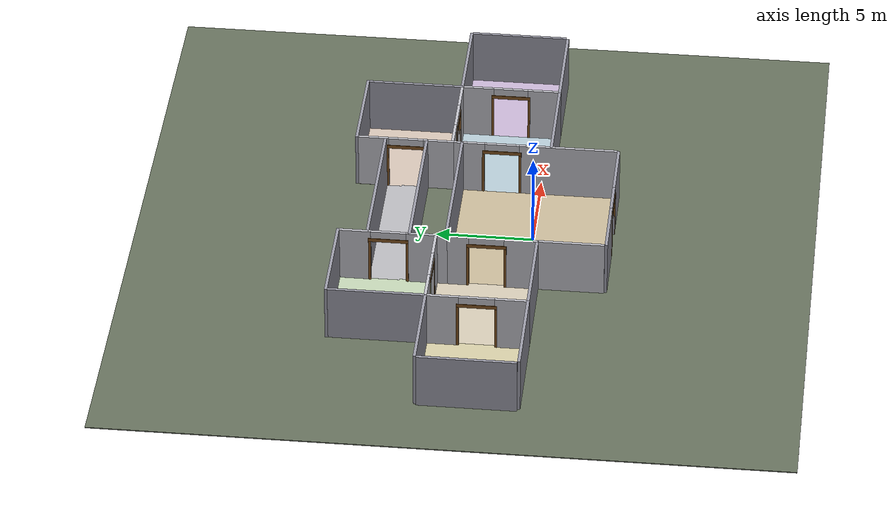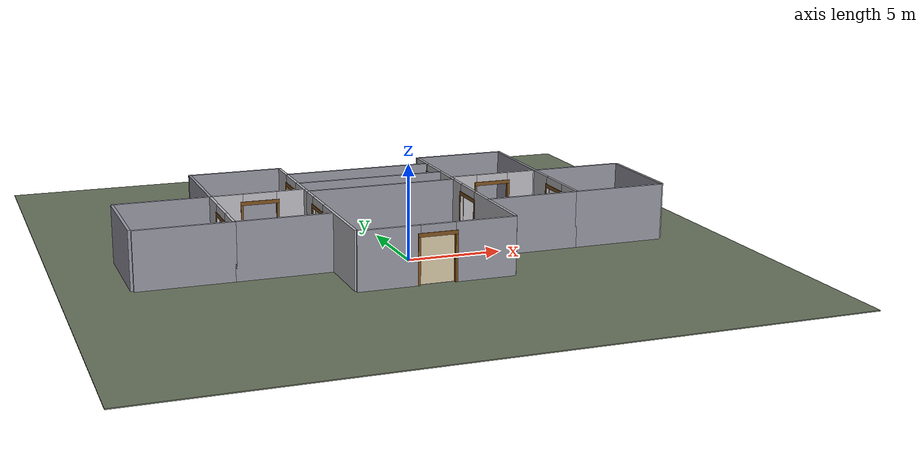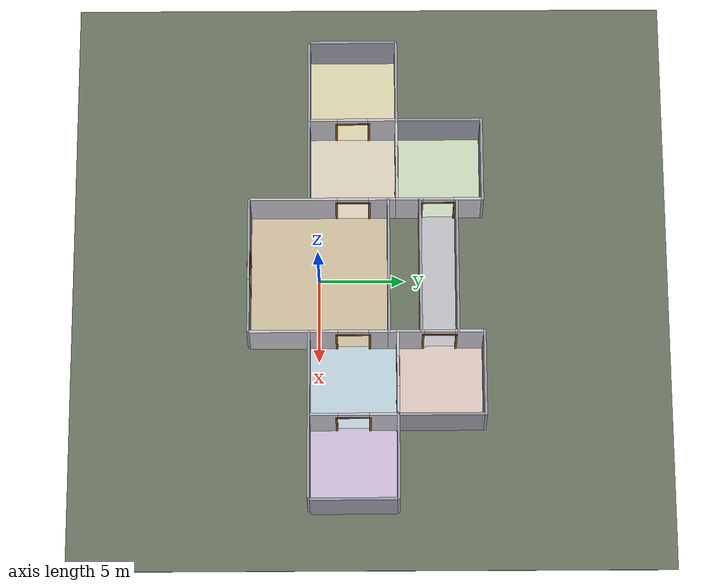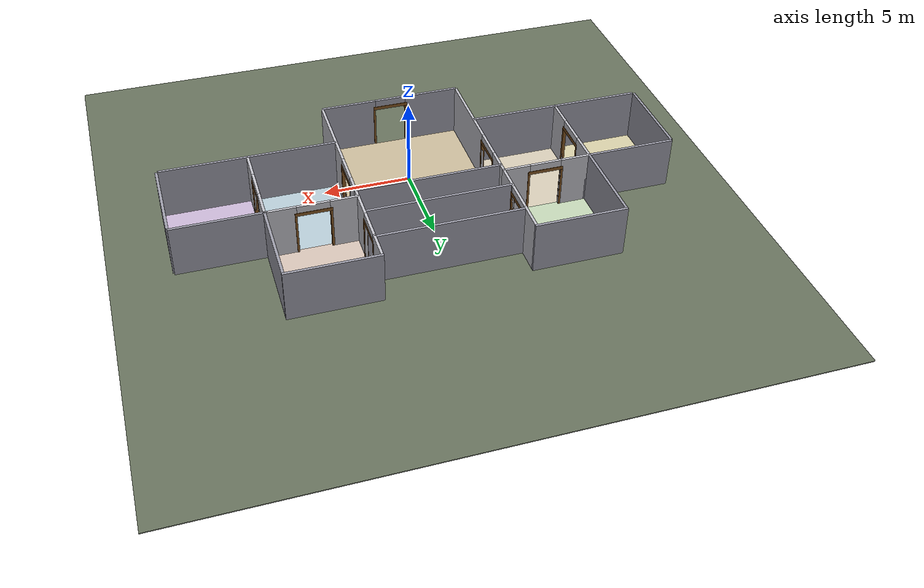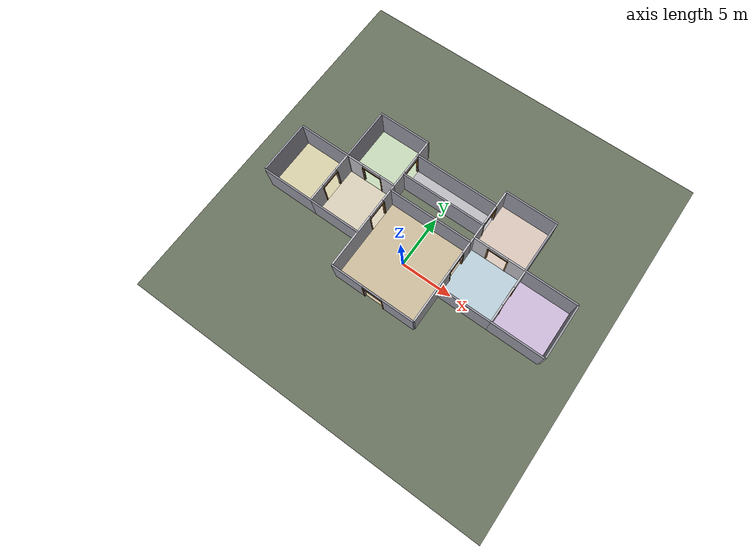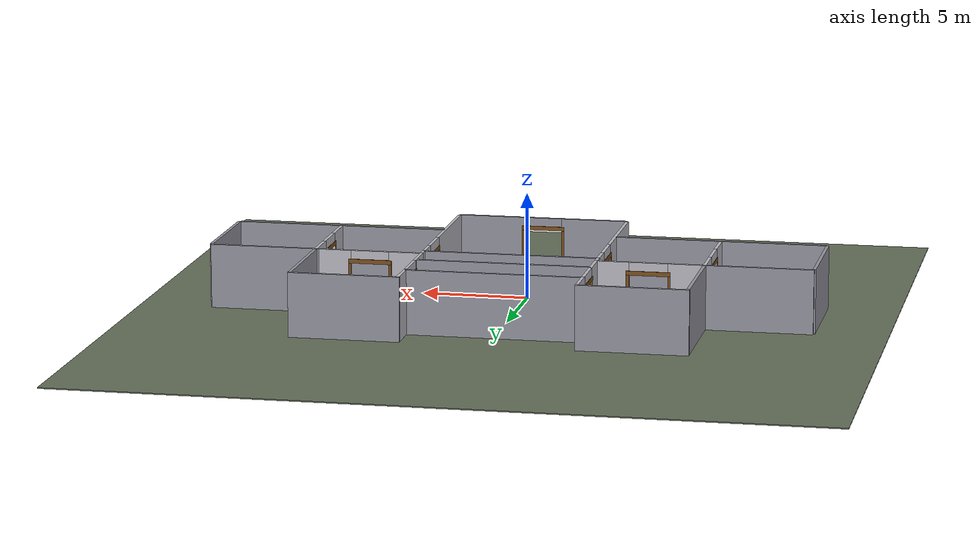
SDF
<?xml version="1.0"?>
<sdf version="1.8">
<model name="indoor_building">
  <static>true</static>
  <pose>0 0 0 0 0 0</pose>

  <!-- ===== GROUND ===== -->
  <link name="ground">
    <pose>0 3 -0.025 0 0 0</pose>
    <collision name="col"><geometry><box><size>35 35 0.05</size></box></geometry></collision>
    <visual name="vis">
      <geometry><box><size>35 35 0.05</size></box></geometry>
      <material><ambient>0.40 0.44 0.36 1</ambient><diffuse>0.40 0.44 0.36 1</diffuse></material>
    </visual>
  </link>

  <!-- ===== ROOM FLOOR OVERLAYS (visual, no collision) ===== -->
  <link name="floor_a">
    <pose>0 0 0.002 0 0 0</pose>
    <visual name="vis">
      <geometry><box><size>8.0 8.0 0.004</size></box></geometry>
      <material><ambient>0.78 0.72 0.60 1</ambient><diffuse>0.78 0.72 0.60 1</diffuse></material>
    </visual>
  </link>
  <link name="floor_b">
    <pose>-6.5 2.0 0.002 0 0 0</pose>
    <visual name="vis">
      <geometry><box><size>5.0 5.0 0.004</size></box></geometry>
      <material><ambient>0.83 0.79 0.71 1</ambient><diffuse>0.83 0.79 0.71 1</diffuse></material>
    </visual>
  </link>
  <link name="floor_c">
    <pose>6.5 2.0 0.002 0 0 0</pose>
    <visual name="vis">
      <geometry><box><size>5.0 5.0 0.004</size></box></geometry>
      <material><ambient>0.71 0.79 0.83 1</ambient><diffuse>0.71 0.79 0.83 1</diffuse></material>
    </visual>
  </link>
  <link name="floor_d">
    <pose>-6.5 7.0 0.002 0 0 0</pose>
    <visual name="vis">
      <geometry><box><size>5.0 5.0 0.004</size></box></geometry>
      <material><ambient>0.76 0.83 0.71 1</ambient><diffuse>0.76 0.83 0.71 1</diffuse></material>
    </visual>
  </link>
  <link name="floor_e">
    <pose>6.5 7.0 0.002 0 0 0</pose>
    <visual name="vis">
      <geometry><box><size>5.0 5.0 0.004</size></box></geometry>
      <material><ambient>0.83 0.76 0.71 1</ambient><diffuse>0.83 0.76 0.71 1</diffuse></material>
    </visual>
  </link>
  <link name="floor_corridor">
    <pose>0 7.0 0.002 0 0 0</pose>
    <visual name="vis">
      <geometry><box><size>8.15 2.0 0.004</size></box></geometry>
      <material><ambient>0.72 0.72 0.74 1</ambient><diffuse>0.72 0.72 0.74 1</diffuse></material>
    </visual>
  </link>

  <!-- ===== ROOM A WALLS ===== -->
  <!-- south – entry door at x=0, width 1.8m -->
  <link name="wall_a_s_l">
    <pose>-2.4875 -4.075 1.5 0 0 0</pose>
    <collision name="col"><geometry><box><size>3.175 0.15 3.0</size></box></geometry></collision>
    <visual name="vis"><geometry><box><size>3.175 0.15 3.0</size></box></geometry>
      <material><ambient>0.60 0.60 0.65 1</ambient><diffuse>0.60 0.60 0.65 1</diffuse></material>
    </visual>
  </link>
  <link name="wall_a_s_r">
    <pose>2.4875 -4.075 1.5 0 0 0</pose>
    <collision name="col"><geometry><box><size>3.175 0.15 3.0</size></box></geometry></collision>
    <visual name="vis"><geometry><box><size>3.175 0.15 3.0</size></box></geometry>
      <material><ambient>0.60 0.60 0.65 1</ambient><diffuse>0.60 0.60 0.65 1</diffuse></material>
    </visual>
  </link>
  <link name="wall_a_s_top">
    <pose>0 -4.075 2.7 0 0 0</pose>
    <collision name="col"><geometry><box><size>1.8 0.15 0.6</size></box></geometry></collision>
    <visual name="vis"><geometry><box><size>1.8 0.15 0.6</size></box></geometry>
      <material><ambient>0.60 0.60 0.65 1</ambient><diffuse>0.60 0.60 0.65 1</diffuse></material>
    </visual>
  </link>

  <!-- north – no door -->
  <link name="wall_a_n">
    <pose>0 4.075 1.5 0 0 0</pose>
    <collision name="col"><geometry><box><size>8.15 0.15 3.0</size></box></geometry></collision>
    <visual name="vis"><geometry><box><size>8.15 0.15 3.0</size></box></geometry>
      <material><ambient>0.60 0.60 0.65 1</ambient><diffuse>0.60 0.60 0.65 1</diffuse></material>
    </visual>
  </link>

  <!-- west (shared with B) – door at y=2.0 -->
  <link name="wall_a_w_bot">
    <pose>-4.075 -1.45 1.5 0 0 0</pose>
    <collision name="col"><geometry><box><size>0.15 5.1 3.0</size></box></geometry></collision>
    <visual name="vis"><geometry><box><size>0.15 5.1 3.0</size></box></geometry>
      <material><ambient>0.75 0.75 0.78 1</ambient><diffuse>0.75 0.75 0.78 1</diffuse></material>
    </visual>
  </link>
  <link name="wall_a_w_top_seg">
    <pose>-4.075 3.45 1.5 0 0 0</pose>
    <collision name="col"><geometry><box><size>0.15 1.1 3.0</size></box></geometry></collision>
    <visual name="vis"><geometry><box><size>0.15 1.1 3.0</size></box></geometry>
      <material><ambient>0.75 0.75 0.78 1</ambient><diffuse>0.75 0.75 0.78 1</diffuse></material>
    </visual>
  </link>
  <link name="wall_a_w_door_top">
    <pose>-4.075 2.0 2.7 0 0 0</pose>
    <collision name="col"><geometry><box><size>0.15 1.8 0.6</size></box></geometry></collision>
    <visual name="vis"><geometry><box><size>0.15 1.8 0.6</size></box></geometry>
      <material><ambient>0.75 0.75 0.78 1</ambient><diffuse>0.75 0.75 0.78 1</diffuse></material>
    </visual>
  </link>

  <!-- east (shared with C) – door at y=2.0 -->
  <link name="wall_a_e_bot">
    <pose>4.075 -1.45 1.5 0 0 0</pose>
    <collision name="col"><geometry><box><size>0.15 5.1 3.0</size></box></geometry></collision>
    <visual name="vis"><geometry><box><size>0.15 5.1 3.0</size></box></geometry>
      <material><ambient>0.75 0.75 0.78 1</ambient><diffuse>0.75 0.75 0.78 1</diffuse></material>
    </visual>
  </link>
  <link name="wall_a_e_top_seg">
    <pose>4.075 3.45 1.5 0 0 0</pose>
    <collision name="col"><geometry><box><size>0.15 1.1 3.0</size></box></geometry></collision>
    <visual name="vis"><geometry><box><size>0.15 1.1 3.0</size></box></geometry>
      <material><ambient>0.75 0.75 0.78 1</ambient><diffuse>0.75 0.75 0.78 1</diffuse></material>
    </visual>
  </link>
  <link name="wall_a_e_door_top">
    <pose>4.075 2.0 2.7 0 0 0</pose>
    <collision name="col"><geometry><box><size>0.15 1.8 0.6</size></box></geometry></collision>
    <visual name="vis"><geometry><box><size>0.15 1.8 0.6</size></box></geometry>
      <material><ambient>0.75 0.75 0.78 1</ambient><diffuse>0.75 0.75 0.78 1</diffuse></material>
    </visual>
  </link>

  <!-- ===== ROOM B WALLS ===== -->
  <!-- south – no door -->
  <link name="wall_b_s">
    <pose>-6.575 -0.575 1.5 0 0 0</pose>
    <collision name="col"><geometry><box><size>5.0 0.15 3.0</size></box></geometry></collision>
    <visual name="vis"><geometry><box><size>5.0 0.15 3.0</size></box></geometry>
      <material><ambient>0.60 0.60 0.65 1</ambient><diffuse>0.60 0.60 0.65 1</diffuse></material>
    </visual>
  </link>
  <!-- west – door to Room G at y=2.0 -->
  <link name="wall_b_w_bot">
    <pose>-9.075 0.3 1.5 0 0 0</pose>
    <collision name="col"><geometry><box><size>0.15 1.6 3.0</size></box></geometry></collision>
    <visual name="vis"><geometry><box><size>0.15 1.6 3.0</size></box></geometry>
      <material><ambient>0.75 0.75 0.78 1</ambient><diffuse>0.75 0.75 0.78 1</diffuse></material>
    </visual>
  </link>
  <link name="wall_b_w_top">
    <pose>-9.075 3.7 1.5 0 0 0</pose>
    <collision name="col"><geometry><box><size>0.15 1.6 3.0</size></box></geometry></collision>
    <visual name="vis"><geometry><box><size>0.15 1.6 3.0</size></box></geometry>
      <material><ambient>0.75 0.75 0.78 1</ambient><diffuse>0.75 0.75 0.78 1</diffuse></material>
    </visual>
  </link>
  <link name="wall_b_w_door_top">
    <pose>-9.075 2.0 2.7 0 0 0</pose>
    <collision name="col"><geometry><box><size>0.15 1.8 0.6</size></box></geometry></collision>
    <visual name="vis"><geometry><box><size>0.15 1.8 0.6</size></box></geometry>
      <material><ambient>0.75 0.75 0.78 1</ambient><diffuse>0.75 0.75 0.78 1</diffuse></material>
    </visual>
  </link>
  <!-- gap filler: B east corner y=4.0–4.5 -->
  <link name="wall_b_e_gap">
    <pose>-4.075 4.25 1.5 0 0 0</pose>
    <collision name="col"><geometry><box><size>0.15 0.5 3.0</size></box></geometry></collision>
    <visual name="vis"><geometry><box><size>0.15 0.5 3.0</size></box></geometry>
      <material><ambient>0.75 0.75 0.78 1</ambient><diffuse>0.75 0.75 0.78 1</diffuse></material>
    </visual>
  </link>
  <!-- north (shared with D) – door at x=-6.5 -->
  <link name="wall_b_n_l">
    <pose>-8.2375 4.575 1.5 0 0 0</pose>
    <collision name="col"><geometry><box><size>1.675 0.15 3.0</size></box></geometry></collision>
    <visual name="vis"><geometry><box><size>1.675 0.15 3.0</size></box></geometry>
      <material><ambient>0.75 0.75 0.78 1</ambient><diffuse>0.75 0.75 0.78 1</diffuse></material>
    </visual>
  </link>
  <link name="wall_b_n_r">
    <pose>-4.8375 4.575 1.5 0 0 0</pose>
    <collision name="col"><geometry><box><size>1.525 0.15 3.0</size></box></geometry></collision>
    <visual name="vis"><geometry><box><size>1.525 0.15 3.0</size></box></geometry>
      <material><ambient>0.75 0.75 0.78 1</ambient><diffuse>0.75 0.75 0.78 1</diffuse></material>
    </visual>
  </link>
  <link name="wall_b_n_top">
    <pose>-6.5 4.575 2.7 0 0 0</pose>
    <collision name="col"><geometry><box><size>1.8 0.15 0.6</size></box></geometry></collision>
    <visual name="vis"><geometry><box><size>1.8 0.15 0.6</size></box></geometry>
      <material><ambient>0.75 0.75 0.78 1</ambient><diffuse>0.75 0.75 0.78 1</diffuse></material>
    </visual>
  </link>

  <!-- ===== ROOM C WALLS ===== -->
  <!-- south – no door -->
  <link name="wall_c_s">
    <pose>6.575 -0.575 1.5 0 0 0</pose>
    <collision name="col"><geometry><box><size>5.0 0.15 3.0</size></box></geometry></collision>
    <visual name="vis"><geometry><box><size>5.0 0.15 3.0</size></box></geometry>
      <material><ambient>0.60 0.60 0.65 1</ambient><diffuse>0.60 0.60 0.65 1</diffuse></material>
    </visual>
  </link>
  <!-- east – door to Room F at y=2.0 -->
  <link name="wall_c_e_bot">
    <pose>9.075 0.3 1.5 0 0 0</pose>
    <collision name="col"><geometry><box><size>0.15 1.6 3.0</size></box></geometry></collision>
    <visual name="vis"><geometry><box><size>0.15 1.6 3.0</size></box></geometry>
      <material><ambient>0.75 0.75 0.78 1</ambient><diffuse>0.75 0.75 0.78 1</diffuse></material>
    </visual>
  </link>
  <link name="wall_c_e_top">
    <pose>9.075 3.7 1.5 0 0 0</pose>
    <collision name="col"><geometry><box><size>0.15 1.6 3.0</size></box></geometry></collision>
    <visual name="vis"><geometry><box><size>0.15 1.6 3.0</size></box></geometry>
      <material><ambient>0.75 0.75 0.78 1</ambient><diffuse>0.75 0.75 0.78 1</diffuse></material>
    </visual>
  </link>
  <link name="wall_c_e_door_top">
    <pose>9.075 2.0 2.7 0 0 0</pose>
    <collision name="col"><geometry><box><size>0.15 1.8 0.6</size></box></geometry></collision>
    <visual name="vis"><geometry><box><size>0.15 1.8 0.6</size></box></geometry>
      <material><ambient>0.75 0.75 0.78 1</ambient><diffuse>0.75 0.75 0.78 1</diffuse></material>
    </visual>
  </link>
  <!-- gap filler: C west corner y=4.0–4.5 -->
  <link name="wall_c_w_gap">
    <pose>4.075 4.25 1.5 0 0 0</pose>
    <collision name="col"><geometry><box><size>0.15 0.5 3.0</size></box></geometry></collision>
    <visual name="vis"><geometry><box><size>0.15 0.5 3.0</size></box></geometry>
      <material><ambient>0.75 0.75 0.78 1</ambient><diffuse>0.75 0.75 0.78 1</diffuse></material>
    </visual>
  </link>
  <!-- north (shared with E) – door at x=6.5 -->
  <link name="wall_c_n_l">
    <pose>4.8375 4.575 1.5 0 0 0</pose>
    <collision name="col"><geometry><box><size>1.525 0.15 3.0</size></box></geometry></collision>
    <visual name="vis"><geometry><box><size>1.525 0.15 3.0</size></box></geometry>
      <material><ambient>0.75 0.75 0.78 1</ambient><diffuse>0.75 0.75 0.78 1</diffuse></material>
    </visual>
  </link>
  <link name="wall_c_n_r">
    <pose>8.2375 4.575 1.5 0 0 0</pose>
    <collision name="col"><geometry><box><size>1.675 0.15 3.0</size></box></geometry></collision>
    <visual name="vis"><geometry><box><size>1.675 0.15 3.0</size></box></geometry>
      <material><ambient>0.75 0.75 0.78 1</ambient><diffuse>0.75 0.75 0.78 1</diffuse></material>
    </visual>
  </link>
  <link name="wall_c_n_top">
    <pose>6.5 4.575 2.7 0 0 0</pose>
    <collision name="col"><geometry><box><size>1.8 0.15 0.6</size></box></geometry></collision>
    <visual name="vis"><geometry><box><size>1.8 0.15 0.6</size></box></geometry>
      <material><ambient>0.75 0.75 0.78 1</ambient><diffuse>0.75 0.75 0.78 1</diffuse></material>
    </visual>
  </link>

  <!-- ===== ROOM D WALLS ===== -->
  <!-- west – no door -->
  <link name="wall_d_w">
    <pose>-9.075 7.0 1.5 0 0 0</pose>
    <collision name="col"><geometry><box><size>0.15 5.0 3.0</size></box></geometry></collision>
    <visual name="vis"><geometry><box><size>0.15 5.0 3.0</size></box></geometry>
      <material><ambient>0.60 0.60 0.65 1</ambient><diffuse>0.60 0.60 0.65 1</diffuse></material>
    </visual>
  </link>
  <!-- north – no door -->
  <link name="wall_d_n">
    <pose>-6.575 9.575 1.5 0 0 0</pose>
    <collision name="col"><geometry><box><size>5.15 0.15 3.0</size></box></geometry></collision>
    <visual name="vis"><geometry><box><size>5.15 0.15 3.0</size></box></geometry>
      <material><ambient>0.60 0.60 0.65 1</ambient><diffuse>0.60 0.60 0.65 1</diffuse></material>
    </visual>
  </link>
  <!-- east (shared with corridor) – door at y=7.0 -->
  <link name="wall_d_e_bot">
    <pose>-4.075 5.3 1.5 0 0 0</pose>
    <collision name="col"><geometry><box><size>0.15 1.6 3.0</size></box></geometry></collision>
    <visual name="vis"><geometry><box><size>0.15 1.6 3.0</size></box></geometry>
      <material><ambient>0.75 0.75 0.78 1</ambient><diffuse>0.75 0.75 0.78 1</diffuse></material>
    </visual>
  </link>
  <link name="wall_d_e_top_seg">
    <pose>-4.075 8.7 1.5 0 0 0</pose>
    <collision name="col"><geometry><box><size>0.15 1.6 3.0</size></box></geometry></collision>
    <visual name="vis"><geometry><box><size>0.15 1.6 3.0</size></box></geometry>
      <material><ambient>0.75 0.75 0.78 1</ambient><diffuse>0.75 0.75 0.78 1</diffuse></material>
    </visual>
  </link>
  <link name="wall_d_e_door_top">
    <pose>-4.075 7.0 2.7 0 0 0</pose>
    <collision name="col"><geometry><box><size>0.15 1.8 0.6</size></box></geometry></collision>
    <visual name="vis"><geometry><box><size>0.15 1.8 0.6</size></box></geometry>
      <material><ambient>0.75 0.75 0.78 1</ambient><diffuse>0.75 0.75 0.78 1</diffuse></material>
    </visual>
  </link>

  <!-- ===== ROOM E WALLS ===== -->
  <!-- east – no door -->
  <link name="wall_e_e">
    <pose>9.075 7.0 1.5 0 0 0</pose>
    <collision name="col"><geometry><box><size>0.15 5.0 3.0</size></box></geometry></collision>
    <visual name="vis"><geometry><box><size>0.15 5.0 3.0</size></box></geometry>
      <material><ambient>0.60 0.60 0.65 1</ambient><diffuse>0.60 0.60 0.65 1</diffuse></material>
    </visual>
  </link>
  <!-- north – no door -->
  <link name="wall_e_n">
    <pose>6.575 9.575 1.5 0 0 0</pose>
    <collision name="col"><geometry><box><size>5.15 0.15 3.0</size></box></geometry></collision>
    <visual name="vis"><geometry><box><size>5.15 0.15 3.0</size></box></geometry>
      <material><ambient>0.60 0.60 0.65 1</ambient><diffuse>0.60 0.60 0.65 1</diffuse></material>
    </visual>
  </link>
  <!-- west (shared with corridor) – door at y=7.0 -->
  <link name="wall_e_w_bot">
    <pose>4.075 5.3 1.5 0 0 0</pose>
    <collision name="col"><geometry><box><size>0.15 1.6 3.0</size></box></geometry></collision>
    <visual name="vis"><geometry><box><size>0.15 1.6 3.0</size></box></geometry>
      <material><ambient>0.75 0.75 0.78 1</ambient><diffuse>0.75 0.75 0.78 1</diffuse></material>
    </visual>
  </link>
  <link name="wall_e_w_top_seg">
    <pose>4.075 8.7 1.5 0 0 0</pose>
    <collision name="col"><geometry><box><size>0.15 1.6 3.0</size></box></geometry></collision>
    <visual name="vis"><geometry><box><size>0.15 1.6 3.0</size></box></geometry>
      <material><ambient>0.75 0.75 0.78 1</ambient><diffuse>0.75 0.75 0.78 1</diffuse></material>
    </visual>
  </link>
  <link name="wall_e_w_door_top">
    <pose>4.075 7.0 2.7 0 0 0</pose>
    <collision name="col"><geometry><box><size>0.15 1.8 0.6</size></box></geometry></collision>
    <visual name="vis"><geometry><box><size>0.15 1.8 0.6</size></box></geometry>
      <material><ambient>0.75 0.75 0.78 1</ambient><diffuse>0.75 0.75 0.78 1</diffuse></material>
    </visual>
  </link>

  <!-- ===== CORRIDOR WALLS ===== -->
  <!-- north – no door -->
  <link name="wall_cor_n">
    <pose>0 8.075 1.5 0 0 0</pose>
    <collision name="col"><geometry><box><size>8.15 0.15 3.0</size></box></geometry></collision>
    <visual name="vis"><geometry><box><size>8.15 0.15 3.0</size></box></geometry>
      <material><ambient>0.60 0.60 0.65 1</ambient><diffuse>0.60 0.60 0.65 1</diffuse></material>
    </visual>
  </link>
  <!-- south – no door -->
  <link name="wall_cor_s">
    <pose>0 5.925 1.5 0 0 0</pose>
    <collision name="col"><geometry><box><size>8.15 0.15 3.0</size></box></geometry></collision>
    <visual name="vis"><geometry><box><size>8.15 0.15 3.0</size></box></geometry>
      <material><ambient>0.60 0.60 0.65 1</ambient><diffuse>0.60 0.60 0.65 1</diffuse></material>
    </visual>
  </link>

  <!-- ===== DOOR FRAMES (visual only, wood brown) ===== -->
  <!-- frame dimensions:
       Y-wall door (wall at x=const): posts (0.19, 0.12, 2.4), lintel (0.19, 2.04, 0.20)
       X-wall door (wall at y=const): posts (0.12, 0.19, 2.4), lintel (2.04, 0.19, 0.20) -->

  <!-- Frame: entry door (A south, y=-4.075, x=0) X-wall -->
  <link name="frm_entry_l"><pose>-0.96 -4.075 1.2 0 0 0</pose>
    <visual name="v"><geometry><box><size>0.12 0.19 2.4</size></box></geometry>
      <material><ambient>0.50 0.32 0.12 1</ambient><diffuse>0.50 0.32 0.12 1</diffuse></material></visual></link>
  <link name="frm_entry_r"><pose>0.96 -4.075 1.2 0 0 0</pose>
    <visual name="v"><geometry><box><size>0.12 0.19 2.4</size></box></geometry>
      <material><ambient>0.50 0.32 0.12 1</ambient><diffuse>0.50 0.32 0.12 1</diffuse></material></visual></link>
  <link name="frm_entry_t"><pose>0 -4.075 2.5 0 0 0</pose>
    <visual name="v"><geometry><box><size>2.04 0.19 0.20</size></box></geometry>
      <material><ambient>0.50 0.32 0.12 1</ambient><diffuse>0.50 0.32 0.12 1</diffuse></material></visual></link>

  <!-- Frame: A↔B (A west, x=-4.075, y=2.0) Y-wall -->
  <link name="frm_ab_l"><pose>-4.075 1.04 1.2 0 0 0</pose>
    <visual name="v"><geometry><box><size>0.19 0.12 2.4</size></box></geometry>
      <material><ambient>0.50 0.32 0.12 1</ambient><diffuse>0.50 0.32 0.12 1</diffuse></material></visual></link>
  <link name="frm_ab_r"><pose>-4.075 2.96 1.2 0 0 0</pose>
    <visual name="v"><geometry><box><size>0.19 0.12 2.4</size></box></geometry>
      <material><ambient>0.50 0.32 0.12 1</ambient><diffuse>0.50 0.32 0.12 1</diffuse></material></visual></link>
  <link name="frm_ab_t"><pose>-4.075 2.0 2.5 0 0 0</pose>
    <visual name="v"><geometry><box><size>0.19 2.04 0.20</size></box></geometry>
      <material><ambient>0.50 0.32 0.12 1</ambient><diffuse>0.50 0.32 0.12 1</diffuse></material></visual></link>

  <!-- Frame: A↔C (A east, x=4.075, y=2.0) Y-wall -->
  <link name="frm_ac_l"><pose>4.075 1.04 1.2 0 0 0</pose>
    <visual name="v"><geometry><box><size>0.19 0.12 2.4</size></box></geometry>
      <material><ambient>0.50 0.32 0.12 1</ambient><diffuse>0.50 0.32 0.12 1</diffuse></material></visual></link>
  <link name="frm_ac_r"><pose>4.075 2.96 1.2 0 0 0</pose>
    <visual name="v"><geometry><box><size>0.19 0.12 2.4</size></box></geometry>
      <material><ambient>0.50 0.32 0.12 1</ambient><diffuse>0.50 0.32 0.12 1</diffuse></material></visual></link>
  <link name="frm_ac_t"><pose>4.075 2.0 2.5 0 0 0</pose>
    <visual name="v"><geometry><box><size>0.19 2.04 0.20</size></box></geometry>
      <material><ambient>0.50 0.32 0.12 1</ambient><diffuse>0.50 0.32 0.12 1</diffuse></material></visual></link>

  <!-- Frame: B↔D (B north, y=4.575, x=-6.5) X-wall -->
  <link name="frm_bd_l"><pose>-7.46 4.575 1.2 0 0 0</pose>
    <visual name="v"><geometry><box><size>0.12 0.19 2.4</size></box></geometry>
      <material><ambient>0.50 0.32 0.12 1</ambient><diffuse>0.50 0.32 0.12 1</diffuse></material></visual></link>
  <link name="frm_bd_r"><pose>-5.54 4.575 1.2 0 0 0</pose>
    <visual name="v"><geometry><box><size>0.12 0.19 2.4</size></box></geometry>
      <material><ambient>0.50 0.32 0.12 1</ambient><diffuse>0.50 0.32 0.12 1</diffuse></material></visual></link>
  <link name="frm_bd_t"><pose>-6.5 4.575 2.5 0 0 0</pose>
    <visual name="v"><geometry><box><size>2.04 0.19 0.20</size></box></geometry>
      <material><ambient>0.50 0.32 0.12 1</ambient><diffuse>0.50 0.32 0.12 1</diffuse></material></visual></link>

  <!-- Frame: C↔E (C north, y=4.575, x=6.5) X-wall -->
  <link name="frm_ce_l"><pose>5.54 4.575 1.2 0 0 0</pose>
    <visual name="v"><geometry><box><size>0.12 0.19 2.4</size></box></geometry>
      <material><ambient>0.50 0.32 0.12 1</ambient><diffuse>0.50 0.32 0.12 1</diffuse></material></visual></link>
  <link name="frm_ce_r"><pose>7.46 4.575 1.2 0 0 0</pose>
    <visual name="v"><geometry><box><size>0.12 0.19 2.4</size></box></geometry>
      <material><ambient>0.50 0.32 0.12 1</ambient><diffuse>0.50 0.32 0.12 1</diffuse></material></visual></link>
  <link name="frm_ce_t"><pose>6.5 4.575 2.5 0 0 0</pose>
    <visual name="v"><geometry><box><size>2.04 0.19 0.20</size></box></geometry>
      <material><ambient>0.50 0.32 0.12 1</ambient><diffuse>0.50 0.32 0.12 1</diffuse></material></visual></link>

  <!-- Frame: D↔corridor (D east, x=-4.075, y=7.0) Y-wall -->
  <link name="frm_dc_l"><pose>-4.075 6.04 1.2 0 0 0</pose>
    <visual name="v"><geometry><box><size>0.19 0.12 2.4</size></box></geometry>
      <material><ambient>0.50 0.32 0.12 1</ambient><diffuse>0.50 0.32 0.12 1</diffuse></material></visual></link>
  <link name="frm_dc_r"><pose>-4.075 7.96 1.2 0 0 0</pose>
    <visual name="v"><geometry><box><size>0.19 0.12 2.4</size></box></geometry>
      <material><ambient>0.50 0.32 0.12 1</ambient><diffuse>0.50 0.32 0.12 1</diffuse></material></visual></link>
  <link name="frm_dc_t"><pose>-4.075 7.0 2.5 0 0 0</pose>
    <visual name="v"><geometry><box><size>0.19 2.04 0.20</size></box></geometry>
      <material><ambient>0.50 0.32 0.12 1</ambient><diffuse>0.50 0.32 0.12 1</diffuse></material></visual></link>

  <!-- Frame: corridor↔E (E west, x=4.075, y=7.0) Y-wall -->
  <link name="frm_ec_l"><pose>4.075 6.04 1.2 0 0 0</pose>
    <visual name="v"><geometry><box><size>0.19 0.12 2.4</size></box></geometry>
      <material><ambient>0.50 0.32 0.12 1</ambient><diffuse>0.50 0.32 0.12 1</diffuse></material></visual></link>
  <link name="frm_ec_r"><pose>4.075 7.96 1.2 0 0 0</pose>
    <visual name="v"><geometry><box><size>0.19 0.12 2.4</size></box></geometry>
      <material><ambient>0.50 0.32 0.12 1</ambient><diffuse>0.50 0.32 0.12 1</diffuse></material></visual></link>
  <link name="frm_ec_t"><pose>4.075 7.0 2.5 0 0 0</pose>
    <visual name="v"><geometry><box><size>0.19 2.04 0.20</size></box></geometry>
      <material><ambient>0.50 0.32 0.12 1</ambient><diffuse>0.50 0.32 0.12 1</diffuse></material></visual></link>

  <!-- ===== ROOM F (dead-end, east of C): x[9,14] y[-0.5,4.5] ===== -->
  <link name="floor_f"><pose>11.5 2.0 0.002 0 0 0</pose>
    <visual name="v"><geometry><box><size>5.0 5.0 0.004</size></box></geometry>
      <material><ambient>0.78 0.71 0.83 1</ambient><diffuse>0.78 0.71 0.83 1</diffuse></material></visual></link>
  <link name="wall_f_s">
    <pose>11.5 -0.575 1.5 0 0 0</pose>
    <collision name="col"><geometry><box><size>5.0 0.15 3.0</size></box></geometry></collision>
    <visual name="vis"><geometry><box><size>5.0 0.15 3.0</size></box></geometry>
      <material><ambient>0.60 0.60 0.65 1</ambient><diffuse>0.60 0.60 0.65 1</diffuse></material></visual>
  </link>
  <link name="wall_f_e">
    <pose>14.075 2.0 1.5 0 0 0</pose>
    <collision name="col"><geometry><box><size>0.15 5.0 3.0</size></box></geometry></collision>
    <visual name="vis"><geometry><box><size>0.15 5.0 3.0</size></box></geometry>
      <material><ambient>0.60 0.60 0.65 1</ambient><diffuse>0.60 0.60 0.65 1</diffuse></material></visual>
  </link>
  <link name="wall_f_n">
    <pose>11.5 4.575 1.5 0 0 0</pose>
    <collision name="col"><geometry><box><size>5.15 0.15 3.0</size></box></geometry></collision>
    <visual name="vis"><geometry><box><size>5.15 0.15 3.0</size></box></geometry>
      <material><ambient>0.60 0.60 0.65 1</ambient><diffuse>0.60 0.60 0.65 1</diffuse></material></visual>
  </link>

  <!-- ===== ROOM G (dead-end, west of B): x[-14,-9] y[-0.5,4.5] ===== -->
  <link name="floor_g"><pose>-11.5 2.0 0.002 0 0 0</pose>
    <visual name="v"><geometry><box><size>5.0 5.0 0.004</size></box></geometry>
      <material><ambient>0.83 0.80 0.65 1</ambient><diffuse>0.83 0.80 0.65 1</diffuse></material></visual></link>
  <link name="wall_g_s">
    <pose>-11.5 -0.575 1.5 0 0 0</pose>
    <collision name="col"><geometry><box><size>5.0 0.15 3.0</size></box></geometry></collision>
    <visual name="vis"><geometry><box><size>5.0 0.15 3.0</size></box></geometry>
      <material><ambient>0.60 0.60 0.65 1</ambient><diffuse>0.60 0.60 0.65 1</diffuse></material></visual>
  </link>
  <link name="wall_g_w">
    <pose>-14.075 2.0 1.5 0 0 0</pose>
    <collision name="col"><geometry><box><size>0.15 5.0 3.0</size></box></geometry></collision>
    <visual name="vis"><geometry><box><size>0.15 5.0 3.0</size></box></geometry>
      <material><ambient>0.60 0.60 0.65 1</ambient><diffuse>0.60 0.60 0.65 1</diffuse></material></visual>
  </link>
  <link name="wall_g_n">
    <pose>-11.5 4.575 1.5 0 0 0</pose>
    <collision name="col"><geometry><box><size>5.15 0.15 3.0</size></box></geometry></collision>
    <visual name="vis"><geometry><box><size>5.15 0.15 3.0</size></box></geometry>
      <material><ambient>0.60 0.60 0.65 1</ambient><diffuse>0.60 0.60 0.65 1</diffuse></material></visual>
  </link>

  <!-- Frame: C↔F (C east, x=9.075, y=2.0) Y-wall -->
  <link name="frm_cf_l"><pose>9.075 1.04 1.2 0 0 0</pose>
    <visual name="v"><geometry><box><size>0.19 0.12 2.4</size></box></geometry>
      <material><ambient>0.50 0.32 0.12 1</ambient><diffuse>0.50 0.32 0.12 1</diffuse></material></visual></link>
  <link name="frm_cf_r"><pose>9.075 2.96 1.2 0 0 0</pose>
    <visual name="v"><geometry><box><size>0.19 0.12 2.4</size></box></geometry>
      <material><ambient>0.50 0.32 0.12 1</ambient><diffuse>0.50 0.32 0.12 1</diffuse></material></visual></link>
  <link name="frm_cf_t"><pose>9.075 2.0 2.5 0 0 0</pose>
    <visual name="v"><geometry><box><size>0.19 2.04 0.20</size></box></geometry>
      <material><ambient>0.50 0.32 0.12 1</ambient><diffuse>0.50 0.32 0.12 1</diffuse></material></visual></link>

  <!-- Frame: B↔G (B west, x=-9.075, y=2.0) Y-wall -->
  <link name="frm_bg_l"><pose>-9.075 1.04 1.2 0 0 0</pose>
    <visual name="v"><geometry><box><size>0.19 0.12 2.4</size></box></geometry>
      <material><ambient>0.50 0.32 0.12 1</ambient><diffuse>0.50 0.32 0.12 1</diffuse></material></visual></link>
  <link name="frm_bg_r"><pose>-9.075 2.96 1.2 0 0 0</pose>
    <visual name="v"><geometry><box><size>0.19 0.12 2.4</size></box></geometry>
      <material><ambient>0.50 0.32 0.12 1</ambient><diffuse>0.50 0.32 0.12 1</diffuse></material></visual></link>
  <link name="frm_bg_t"><pose>-9.075 2.0 2.5 0 0 0</pose>
    <visual name="v"><geometry><box><size>0.19 2.04 0.20</size></box></geometry>
      <material><ambient>0.50 0.32 0.12 1</ambient><diffuse>0.50 0.32 0.12 1</diffuse></material></visual></link>

</model>
</sdf>
